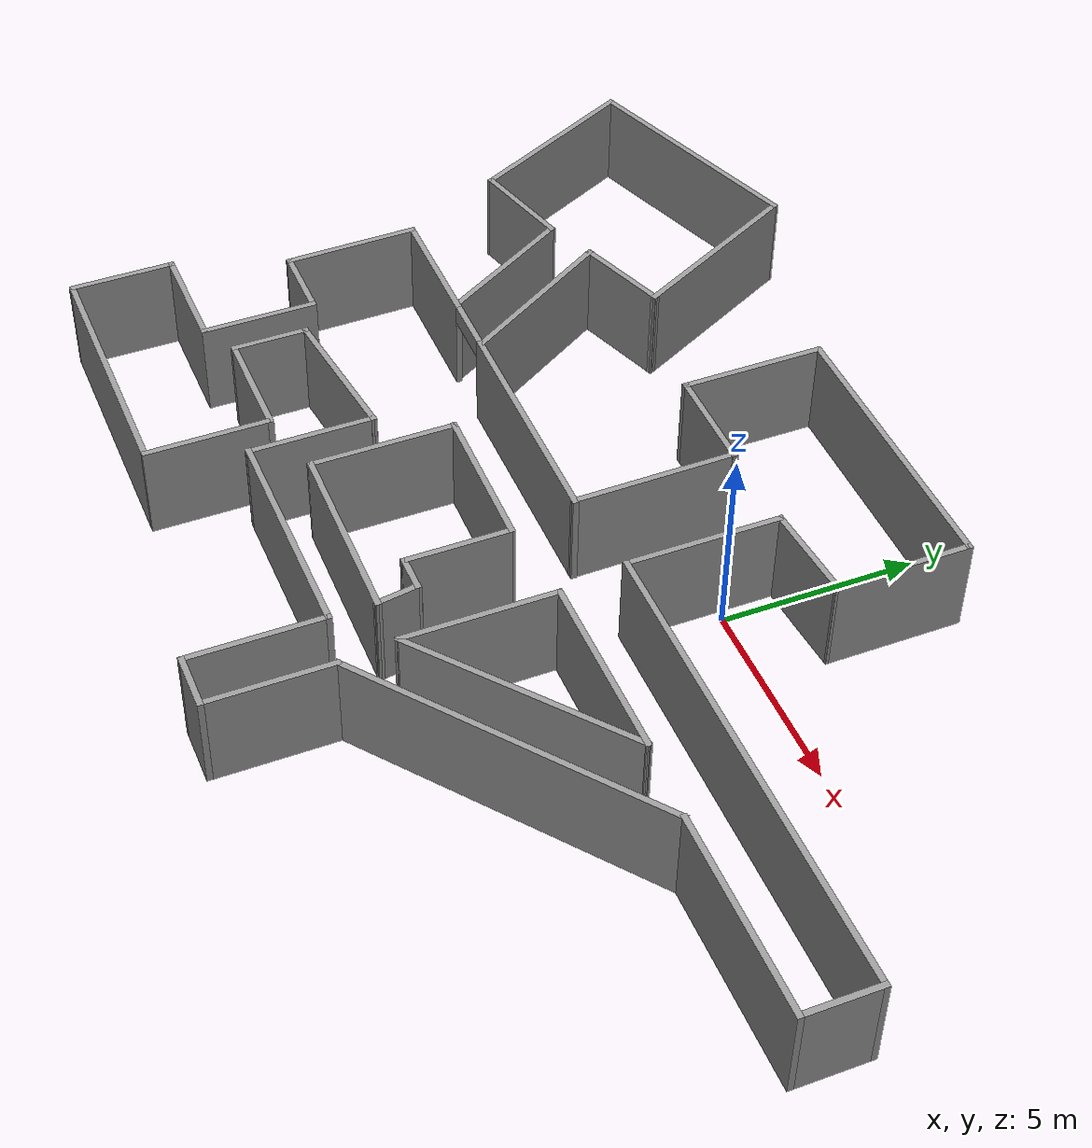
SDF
<?xml version='1.0'?>
<sdf version='1.7'>
  <model name='room2'>
    <pose>-2.56449 -2.91601 0 0 -0 0</pose>
    <link name='Wall_0'>
      <collision name='Wall_0_Collision'>
        <geometry>
          <box>
            <size>2.8007 0.15 2.5</size>
          </box>
        </geometry>
        <pose>0 0 1.25 0 -0 0</pose>
      </collision>
      <visual name='Wall_0_Visual'>
        <pose>0 0 1.25 0 -0 0</pose>
        <geometry>
          <box>
            <size>2.8007 0.15 2.5</size>
          </box>
        </geometry>
        <material>
          <script>
            <uri>file://media/materials/scripts/gazebo.material</uri>
            <name>Gazebo/Grey</name>
          </script>
          <ambient>1 1 1 1</ambient>
        </material>
        <meta>
          <layer>0</layer>
        </meta>
      </visual>
      <pose>-1.42016 4.33601 0 0 -0 3.14159</pose>
    </link>
    <link name='Wall_1'>
      <collision name='Wall_1_Collision'>
        <geometry>
          <box>
            <size>3.75 0.15 2.5</size>
          </box>
        </geometry>
        <pose>0 0 1.25 0 -0 0</pose>
      </collision>
      <visual name='Wall_1_Visual'>
        <pose>0 0 1.25 0 -0 0</pose>
        <geometry>
          <box>
            <size>3.75 0.15 2.5</size>
          </box>
        </geometry>
        <material>
          <script>
            <uri>file://media/materials/scripts/gazebo.material</uri>
            <name>Gazebo/Grey</name>
          </script>
          <ambient>1 1 1 1</ambient>
        </material>
        <meta>
          <layer>0</layer>
        </meta>
      </visual>
      <pose>-2.74551 6.13601 0 0 -0 1.5708</pose>
    </link>
    <link name='Wall_10'>
      <collision name='Wall_10_Collision'>
        <geometry>
          <box>
            <size>3.25 0.15 2.5</size>
          </box>
        </geometry>
        <pose>0 0 1.25 0 -0 0</pose>
      </collision>
      <visual name='Wall_10_Visual'>
        <pose>0 0 1.25 0 -0 0</pose>
        <geometry>
          <box>
            <size>3.25 0.15 2.5</size>
          </box>
        </geometry>
        <material>
          <script>
            <uri>file://media/materials/scripts/gazebo.material</uri>
            <name>Gazebo/Grey</name>
          </script>
          <ambient>1 1 1 1</ambient>
        </material>
        <meta>
          <layer>0</layer>
        </meta>
      </visual>
      <pose>2.61795 -7.99942 0 0 -0 -1.5708</pose>
    </link>
    <link name='Wall_11'>
      <collision name='Wall_11_Collision'>
        <geometry>
          <box>
            <size>1.5 0.15 2.5</size>
          </box>
        </geometry>
        <pose>0 0 1.25 0 -0 0</pose>
      </collision>
      <visual name='Wall_11_Visual'>
        <pose>0 0 1.25 0 -0 0</pose>
        <geometry>
          <box>
            <size>1.5 0.15 2.5</size>
          </box>
        </geometry>
        <material>
          <script>
            <uri>file://media/materials/scripts/gazebo.material</uri>
            <name>Gazebo/Grey</name>
          </script>
          <ambient>1 1 1 1</ambient>
        </material>
        <meta>
          <layer>0</layer>
        </meta>
      </visual>
      <pose>1.94295 -9.54942 0 0 -0 3.14159</pose>
    </link>
    <link name='Wall_12'>
      <collision name='Wall_12_Collision'>
        <geometry>
          <box>
            <size>3.5 0.15 2.5</size>
          </box>
        </geometry>
        <pose>0 0 1.25 0 -0 0</pose>
      </collision>
      <visual name='Wall_12_Visual'>
        <pose>0 0 1.25 0 -0 0</pose>
        <geometry>
          <box>
            <size>3.5 0.15 2.5</size>
          </box>
        </geometry>
        <material>
          <script>
            <uri>file://media/materials/scripts/gazebo.material</uri>
            <name>Gazebo/Grey</name>
          </script>
          <ambient>1 1 1 1</ambient>
        </material>
        <meta>
          <layer>0</layer>
        </meta>
      </visual>
      <pose>1.26795 -7.87442 0 0 -0 1.5708</pose>
    </link>
    <link name='Wall_13'>
      <collision name='Wall_13_Collision'>
        <geometry>
          <box>
            <size>5.90115 0.15 2.5</size>
          </box>
        </geometry>
        <pose>0 0 1.25 0 -0 0</pose>
      </collision>
      <visual name='Wall_13_Visual'>
        <pose>0 0 1.25 0 -0 0</pose>
        <geometry>
          <box>
            <size>5.90115 0.15 2.5</size>
          </box>
        </geometry>
        <material>
          <script>
            <uri>file://media/materials/scripts/gazebo.material</uri>
            <name>Gazebo/Grey</name>
          </script>
          <ambient>1 1 1 1</ambient>
        </material>
        <meta>
          <layer>0</layer>
        </meta>
      </visual>
      <pose>-1.60762 -6.19942 0 0 -0 3.14159</pose>
    </link>
    <link name='Wall_14'>
      <collision name='Wall_14_Collision'>
        <geometry>
          <box>
            <size>3.25 0.15 2.5</size>
          </box>
        </geometry>
        <pose>0 0 1.25 0 -0 0</pose>
      </collision>
      <visual name='Wall_14_Visual'>
        <pose>0 0 1.25 0 -0 0</pose>
        <geometry>
          <box>
            <size>3.25 0.15 2.5</size>
          </box>
        </geometry>
        <material>
          <script>
            <uri>file://media/materials/scripts/gazebo.material</uri>
            <name>Gazebo/Grey</name>
          </script>
          <ambient>1 1 1 1</ambient>
        </material>
        <meta>
          <layer>0</layer>
        </meta>
      </visual>
      <pose>-4.46007 -4.64942 0 0 -0 1.5708</pose>
    </link>
    <link name='Wall_16'>
      <collision name='Wall_16_Collision'>
        <geometry>
          <box>
            <size>3.50127 0.15 2.5</size>
          </box>
        </geometry>
        <pose>0 0 1.25 0 -0 0</pose>
      </collision>
      <visual name='Wall_16_Visual'>
        <pose>0 0 1.25 0 -0 0</pose>
        <geometry>
          <box>
            <size>3.50127 0.15 2.5</size>
          </box>
        </geometry>
        <material>
          <script>
            <uri>file://media/materials/scripts/gazebo.material</uri>
            <name>Gazebo/Grey</name>
          </script>
          <ambient>1 1 1 1</ambient>
        </material>
        <meta>
          <layer>0</layer>
        </meta>
      </visual>
      <pose>-10.9194 -1.37769 0 0 -0 1.5846</pose>
    </link>
    <link name='Wall_17'>
      <pose>-5.4985 0.28622 0 0 -0 -0.006373</pose>
      <visual name='Wall_17_Visual_0'>
        <pose>-3.78907 0 1.25 0 -0 0</pose>
        <geometry>
          <box>
            <size>3.46012 0.15 2.5</size>
          </box>
        </geometry>
        <material>
          <script>
            <uri>file://media/materials/scripts/gazebo.material</uri>
            <name>Gazebo/Grey</name>
          </script>
          <ambient>1 1 1 1</ambient>
        </material>
        <meta>
          <layer>0</layer>
        </meta>
      </visual>
      <collision name='Wall_17_Collision_0'>
        <geometry>
          <box>
            <size>3.46012 0.15 2.5</size>
          </box>
        </geometry>
        <pose>-3.78907 0 1.25 0 -0 0</pose>
      </collision>
      <visual name='Wall_17_Visual_1'>
        <pose>2.43798 0 1.25 0 -0 0</pose>
        <geometry>
          <box>
            <size>6.16229 0.15 2.5</size>
          </box>
        </geometry>
        <material>
          <script>
            <uri>file://media/materials/scripts/gazebo.material</uri>
            <name>Gazebo/Grey</name>
          </script>
          <ambient>1 1 1 1</ambient>
        </material>
        <meta>
          <layer>0</layer>
        </meta>
      </visual>
      <collision name='Wall_17_Collision_1'>
        <geometry>
          <box>
            <size>6.16229 0.15 2.5</size>
          </box>
        </geometry>
        <pose>2.43798 0 1.25 0 -0 0</pose>
      </collision>
      <visual name='Wall_17_Visual_2'>
        <pose>-1.35109 0 2.25 0 -0 0</pose>
        <geometry>
          <box>
            <size>1.41585 0.15 0.5</size>
          </box>
        </geometry>
        <material>
          <script>
            <uri>file://media/materials/scripts/gazebo.material</uri>
            <name>Gazebo/Grey</name>
          </script>
          <ambient>1 1 1 1</ambient>
        </material>
        <meta>
          <layer>0</layer>
        </meta>
      </visual>
      <collision name='Wall_17_Collision_2'>
        <geometry>
          <box>
            <size>1.41585 0.15 0.5</size>
          </box>
        </geometry>
        <pose>-1.35109 0 2.25 0 -0 0</pose>
      </collision>
    </link>
    <link name='Wall_18'>
      <collision name='Wall_18_Collision'>
        <geometry>
          <box>
            <size>4.23469 0.15 2.5</size>
          </box>
        </geometry>
        <pose>0 0 1.25 0 -0 0</pose>
      </collision>
      <visual name='Wall_18_Visual'>
        <pose>0 0 1.25 0 -0 0</pose>
        <geometry>
          <box>
            <size>4.23469 0.15 2.5</size>
          </box>
        </geometry>
        <material>
          <script>
            <uri>file://media/materials/scripts/gazebo.material</uri>
            <name>Gazebo/Grey</name>
          </script>
          <ambient>1 1 1 1</ambient>
        </material>
        <meta>
          <layer>0</layer>
        </meta>
      </visual>
      <pose>-0.097777 2.29377 0 0 -0 1.58067</pose>
    </link>
    <link name='Wall_2'>
      <collision name='Wall_2_Collision'>
        <geometry>
          <box>
            <size>7.5 0.15 2.5</size>
          </box>
        </geometry>
        <pose>0 0 1.25 0 -0 0</pose>
      </collision>
      <visual name='Wall_2_Visual'>
        <pose>0 0 1.25 0 -0 0</pose>
        <geometry>
          <box>
            <size>7.5 0.15 2.5</size>
          </box>
        </geometry>
        <material>
          <script>
            <uri>file://media/materials/scripts/gazebo.material</uri>
            <name>Gazebo/Grey</name>
          </script>
          <ambient>1 1 1 1</ambient>
        </material>
        <meta>
          <layer>0</layer>
        </meta>
      </visual>
      <pose>0.929492 7.93601 0 0 -0 0</pose>
    </link>
    <link name='Wall_20'>
      <collision name='Wall_20_Collision'>
        <geometry>
          <box>
            <size>4.84259 0.15 2.5</size>
          </box>
        </geometry>
        <pose>0 0 1.25 0 -0 0</pose>
      </collision>
      <visual name='Wall_20_Visual'>
        <pose>0 0 1.25 0 -0 0</pose>
        <geometry>
          <box>
            <size>4.84259 0.15 2.5</size>
          </box>
        </geometry>
        <material>
          <script>
            <uri>file://media/materials/scripts/gazebo.material</uri>
            <name>Gazebo/Grey</name>
          </script>
          <ambient>1 1 1 1</ambient>
        </material>
        <meta>
          <layer>0</layer>
        </meta>
      </visual>
      <pose>4.82573 -1.19236 0 0 -0 0</pose>
    </link>
    <link name='Wall_23'>
      <collision name='Wall_23_Collision'>
        <geometry>
          <box>
            <size>6.18532 0.15 2.5</size>
          </box>
        </geometry>
        <pose>0 0 1.25 0 -0 0</pose>
      </collision>
      <visual name='Wall_23_Visual'>
        <pose>0 0 1.25 0 -0 0</pose>
        <geometry>
          <box>
            <size>6.18532 0.15 2.5</size>
          </box>
        </geometry>
        <material>
          <script>
            <uri>file://media/materials/scripts/gazebo.material</uri>
            <name>Gazebo/Grey</name>
          </script>
          <ambient>1 1 1 1</ambient>
        </material>
        <meta>
          <layer>0</layer>
        </meta>
      </visual>
      <pose>4.82573 -3.09003 0 0 -0 -2.46151</pose>
    </link>
    <link name='Wall_24'>
      <collision name='Wall_24_Collision'>
        <geometry>
          <box>
            <size>3.94534 0.15 2.5</size>
          </box>
        </geometry>
        <pose>0 0 1.25 0 -0 0</pose>
      </collision>
      <visual name='Wall_24_Visual'>
        <pose>0 0 1.25 0 -0 0</pose>
        <geometry>
          <box>
            <size>3.94534 0.15 2.5</size>
          </box>
        </geometry>
        <material>
          <script>
            <uri>file://media/materials/scripts/gazebo.material</uri>
            <name>Gazebo/Grey</name>
          </script>
          <ambient>1 1 1 1</ambient>
        </material>
        <meta>
          <layer>0</layer>
        </meta>
      </visual>
      <pose>2.46195 -3.09003 0 0 -0 1.5708</pose>
    </link>
    <link name='Wall_27'>
      <collision name='Wall_27_Collision'>
        <geometry>
          <box>
            <size>4.94791 0.15 2.5</size>
          </box>
        </geometry>
        <pose>0 0 1.25 0 -0 0</pose>
      </collision>
      <visual name='Wall_27_Visual'>
        <pose>0 0 1.25 0 -0 0</pose>
        <geometry>
          <box>
            <size>4.94791 0.15 2.5</size>
          </box>
        </geometry>
        <material>
          <script>
            <uri>file://media/materials/scripts/gazebo.material</uri>
            <name>Gazebo/Grey</name>
          </script>
          <ambient>1 1 1 1</ambient>
        </material>
        <meta>
          <layer>0</layer>
        </meta>
      </visual>
      <pose>-1.12608 -5.02296 0 0 -0 3.12713</pose>
    </link>
    <link name='Wall_28'>
      <collision name='Wall_28_Collision'>
        <geometry>
          <box>
            <size>3.75 0.15 2.5</size>
          </box>
        </geometry>
        <pose>0 0 1.25 0 -0 0</pose>
      </collision>
      <visual name='Wall_28_Visual'>
        <pose>0 0 1.25 0 -0 0</pose>
        <geometry>
          <box>
            <size>3.75 0.15 2.5</size>
          </box>
        </geometry>
        <material>
          <script>
            <uri>file://media/materials/scripts/gazebo.material</uri>
            <name>Gazebo/Grey</name>
          </script>
          <ambient>1 1 1 1</ambient>
        </material>
        <meta>
          <layer>0</layer>
        </meta>
      </visual>
      <pose>-3.50165 -3.18827 0 0 -0 1.5708</pose>
    </link>
    <link name='Wall_29'>
      <collision name='Wall_29_Collision'>
        <geometry>
          <box>
            <size>3.94804 0.15 2.5</size>
          </box>
        </geometry>
        <pose>0 0 1.25 0 -0 0</pose>
      </collision>
      <visual name='Wall_29_Visual'>
        <pose>0 0 1.25 0 -0 0</pose>
        <geometry>
          <box>
            <size>3.94804 0.15 2.5</size>
          </box>
        </geometry>
        <material>
          <script>
            <uri>file://media/materials/scripts/gazebo.material</uri>
            <name>Gazebo/Grey</name>
          </script>
          <ambient>1 1 1 1</ambient>
        </material>
        <meta>
          <layer>0</layer>
        </meta>
      </visual>
      <pose>-1.62608 -1.42296 0 0 -0 -0.018271</pose>
    </link>
    <link name='Wall_3'>
      <collision name='Wall_3_Collision'>
        <geometry>
          <box>
            <size>3.5 0.15 2.5</size>
          </box>
        </geometry>
        <pose>0 0 1.25 0 -0 0</pose>
      </collision>
      <visual name='Wall_3_Visual'>
        <pose>0 0 1.25 0 -0 0</pose>
        <geometry>
          <box>
            <size>3.5 0.15 2.5</size>
          </box>
        </geometry>
        <material>
          <script>
            <uri>file://media/materials/scripts/gazebo.material</uri>
            <name>Gazebo/Grey</name>
          </script>
          <ambient>1 1 1 1</ambient>
        </material>
        <meta>
          <layer>0</layer>
        </meta>
      </visual>
      <pose>4.60449 6.26101 0 0 -0 -1.5708</pose>
    </link>
    <link name='Wall_30'>
      <collision name='Wall_30_Collision'>
        <geometry>
          <box>
            <size>2.75 0.15 2.5</size>
          </box>
        </geometry>
        <pose>0 0 1.25 0 -0 0</pose>
      </collision>
      <visual name='Wall_30_Visual'>
        <pose>0 0 1.25 0 -0 0</pose>
        <geometry>
          <box>
            <size>2.75 0.15 2.5</size>
          </box>
        </geometry>
        <material>
          <script>
            <uri>file://media/materials/scripts/gazebo.material</uri>
            <name>Gazebo/Grey</name>
          </script>
          <ambient>1 1 1 1</ambient>
        </material>
        <meta>
          <layer>0</layer>
        </meta>
      </visual>
      <pose>0.272622 -2.75766 0 0 -0 -1.5708</pose>
    </link>
    <link name='Wall_31'>
      <collision name='Wall_31_Collision'>
        <geometry>
          <box>
            <size>1 0.15 2.5</size>
          </box>
        </geometry>
        <pose>0 0 1.25 0 -0 0</pose>
      </collision>
      <visual name='Wall_31_Visual'>
        <pose>0 0 1.25 0 -0 0</pose>
        <geometry>
          <box>
            <size>1 0.15 2.5</size>
          </box>
        </geometry>
        <material>
          <script>
            <uri>file://media/materials/scripts/gazebo.material</uri>
            <name>Gazebo/Grey</name>
          </script>
          <ambient>1 1 1 1</ambient>
        </material>
        <meta>
          <layer>0</layer>
        </meta>
      </visual>
      <pose>0.697622 -4.05766 0 0 -0 0</pose>
    </link>
    <link name='Wall_32'>
      <collision name='Wall_32_Collision'>
        <geometry>
          <box>
            <size>1.16119 0.15 2.5</size>
          </box>
        </geometry>
        <pose>0 0 1.25 0 -0 0</pose>
      </collision>
      <visual name='Wall_32_Visual'>
        <pose>0 0 1.25 0 -0 0</pose>
        <geometry>
          <box>
            <size>1.16119 0.15 2.5</size>
          </box>
        </geometry>
        <material>
          <script>
            <uri>file://media/materials/scripts/gazebo.material</uri>
            <name>Gazebo/Grey</name>
          </script>
          <ambient>1 1 1 1</ambient>
        </material>
        <meta>
          <layer>0</layer>
        </meta>
      </visual>
      <pose>1.19762 -4.55766 0 0 -0 -1.42191</pose>
    </link>
    <link name='Wall_34'>
      <collision name='Wall_34_Collision'>
        <geometry>
          <box>
            <size>4 0.15 2.5</size>
          </box>
        </geometry>
        <pose>0 0 1.25 0 -0 0</pose>
      </collision>
      <visual name='Wall_34_Visual'>
        <pose>0 0 1.25 0 -0 0</pose>
        <geometry>
          <box>
            <size>4 0.15 2.5</size>
          </box>
        </geometry>
        <material>
          <script>
            <uri>file://media/materials/scripts/gazebo.material</uri>
            <name>Gazebo/Grey</name>
          </script>
          <ambient>1 1 1 1</ambient>
        </material>
        <meta>
          <layer>0</layer>
        </meta>
      </visual>
      <pose>-8.67557 2.03104 0 0 -0 2.0944</pose>
    </link>
    <link name='Wall_35'>
      <collision name='Wall_35_Collision'>
        <geometry>
          <box>
            <size>2.75 0.15 2.5</size>
          </box>
        </geometry>
        <pose>0 0 1.25 0 -0 0</pose>
      </collision>
      <visual name='Wall_35_Visual'>
        <pose>0 0 1.25 0 -0 0</pose>
        <geometry>
          <box>
            <size>2.75 0.15 2.5</size>
          </box>
        </geometry>
        <material>
          <script>
            <uri>file://media/materials/scripts/gazebo.material</uri>
            <name>Gazebo/Grey</name>
          </script>
          <ambient>1 1 1 1</ambient>
        </material>
        <meta>
          <layer>0</layer>
        </meta>
      </visual>
      <pose>-10.8938 3.36167 0 0 -0 -2.87979</pose>
    </link>
    <link name='Wall_36'>
      <collision name='Wall_36_Collision'>
        <geometry>
          <box>
            <size>5.05465 0.15 2.5</size>
          </box>
        </geometry>
        <pose>0 0 1.25 0 -0 0</pose>
      </collision>
      <visual name='Wall_36_Visual'>
        <pose>0 0 1.25 0 -0 0</pose>
        <geometry>
          <box>
            <size>5.05465 0.15 2.5</size>
          </box>
        </geometry>
        <material>
          <script>
            <uri>file://media/materials/scripts/gazebo.material</uri>
            <name>Gazebo/Grey</name>
          </script>
          <ambient>1 1 1 1</ambient>
        </material>
        <meta>
          <layer>0</layer>
        </meta>
      </visual>
      <pose>-13.2158 5.23356 0 0 -0 2.02065</pose>
    </link>
    <link name='Wall_37'>
      <collision name='Wall_37_Collision'>
        <geometry>
          <box>
            <size>6.42671 0.15 2.5</size>
          </box>
        </geometry>
        <pose>0 0 1.25 0 -0 0</pose>
      </collision>
      <visual name='Wall_37_Visual'>
        <pose>0 0 1.25 0 -0 0</pose>
        <geometry>
          <box>
            <size>6.42671 0.15 2.5</size>
          </box>
        </geometry>
        <material>
          <script>
            <uri>file://media/materials/scripts/gazebo.material</uri>
            <name>Gazebo/Grey</name>
          </script>
          <ambient>1 1 1 1</ambient>
        </material>
        <meta>
          <layer>0</layer>
        </meta>
      </visual>
      <pose>-11.3214 8.48279 0 0 -0 0.338066</pose>
    </link>
    <link name='Wall_38'>
      <collision name='Wall_38_Collision'>
        <geometry>
          <box>
            <size>5.17738 0.15 2.5</size>
          </box>
        </geometry>
        <pose>0 0 1.25 0 -0 0</pose>
      </collision>
      <visual name='Wall_38_Visual'>
        <pose>0 0 1.25 0 -0 0</pose>
        <geometry>
          <box>
            <size>5.17738 0.15 2.5</size>
          </box>
        </geometry>
        <material>
          <script>
            <uri>file://media/materials/scripts/gazebo.material</uri>
            <name>Gazebo/Grey</name>
          </script>
          <ambient>1 1 1 1</ambient>
        </material>
        <meta>
          <layer>0</layer>
        </meta>
      </visual>
      <pose>-7.22733 7.27999 0 0 -0 -1.10303</pose>
    </link>
    <link name='Wall_39'>
      <collision name='Wall_39_Collision'>
        <geometry>
          <box>
            <size>2.55703 0.15 2.5</size>
          </box>
        </geometry>
        <pose>0 0 1.25 0 -0 0</pose>
      </collision>
      <visual name='Wall_39_Visual'>
        <pose>0 0 1.25 0 -0 0</pose>
        <geometry>
          <box>
            <size>2.55703 0.15 2.5</size>
          </box>
        </geometry>
        <material>
          <script>
            <uri>file://media/materials/scripts/gazebo.material</uri>
            <name>Gazebo/Grey</name>
          </script>
          <ambient>1 1 1 1</ambient>
        </material>
        <meta>
          <layer>0</layer>
        </meta>
      </visual>
      <pose>-7.22733 4.63154 0 0 -0 -2.79857</pose>
    </link>
    <link name='Wall_4'>
      <collision name='Wall_4_Collision'>
        <geometry>
          <box>
            <size>2.55482 0.15 2.5</size>
          </box>
        </geometry>
        <pose>0 0 1.25 0 -0 0</pose>
      </collision>
      <visual name='Wall_4_Visual'>
        <pose>0 0 1.25 0 -0 0</pose>
        <geometry>
          <box>
            <size>2.55482 0.15 2.5</size>
          </box>
        </geometry>
        <material>
          <script>
            <uri>file://media/materials/scripts/gazebo.material</uri>
            <name>Gazebo/Grey</name>
          </script>
          <ambient>1 1 1 1</ambient>
        </material>
        <meta>
          <layer>0</layer>
        </meta>
      </visual>
      <pose>3.4059 4.49021 0 0 -0 -3.06184</pose>
    </link>
    <link name='Wall_40'>
      <collision name='Wall_40_Collision'>
        <geometry>
          <box>
            <size>4.67226 0.15 2.5</size>
          </box>
        </geometry>
        <pose>0 0 1.25 0 -0 0</pose>
      </collision>
      <visual name='Wall_40_Visual'>
        <pose>0 0 1.25 0 -0 0</pose>
        <geometry>
          <box>
            <size>4.67226 0.15 2.5</size>
          </box>
        </geometry>
        <material>
          <script>
            <uri>file://media/materials/scripts/gazebo.material</uri>
            <name>Gazebo/Grey</name>
          </script>
          <ambient>1 1 1 1</ambient>
        </material>
        <meta>
          <layer>0</layer>
        </meta>
      </visual>
      <pose>-7.2042 2.28378 0 0 -0 -1.03389</pose>
    </link>
    <link name='Wall_44'>
      <collision name='Wall_44_Collision'>
        <geometry>
          <box>
            <size>2 0.15 2.5</size>
          </box>
        </geometry>
        <pose>0 0 1.25 0 -0 0</pose>
      </collision>
      <visual name='Wall_44_Visual'>
        <pose>0 0 1.25 0 -0 0</pose>
        <geometry>
          <box>
            <size>2 0.15 2.5</size>
          </box>
        </geometry>
        <material>
          <script>
            <uri>file://media/materials/scripts/gazebo.material</uri>
            <name>Gazebo/Grey</name>
          </script>
          <ambient>1 1 1 1</ambient>
        </material>
        <meta>
          <layer>0</layer>
        </meta>
      </visual>
      <pose>-9.97126 -3.05316 0 0 -0 0</pose>
    </link>
    <link name='Wall_45'>
      <collision name='Wall_45_Collision'>
        <geometry>
          <box>
            <size>3 0.15 2.5</size>
          </box>
        </geometry>
        <pose>0 0 1.25 0 -0 0</pose>
      </collision>
      <visual name='Wall_45_Visual'>
        <pose>0 0 1.25 0 -0 0</pose>
        <geometry>
          <box>
            <size>3 0.15 2.5</size>
          </box>
        </geometry>
        <material>
          <script>
            <uri>file://media/materials/scripts/gazebo.material</uri>
            <name>Gazebo/Grey</name>
          </script>
          <ambient>1 1 1 1</ambient>
        </material>
        <meta>
          <layer>0</layer>
        </meta>
      </visual>
      <pose>-9.04626 -4.47816 0 0 -0 -1.5708</pose>
    </link>
    <link name='Wall_46'>
      <collision name='Wall_46_Collision'>
        <geometry>
          <box>
            <size>3 0.15 2.5</size>
          </box>
        </geometry>
        <pose>0 0 1.25 0 -0 0</pose>
      </collision>
      <visual name='Wall_46_Visual'>
        <pose>0 0 1.25 0 -0 0</pose>
        <geometry>
          <box>
            <size>3 0.15 2.5</size>
          </box>
        </geometry>
        <material>
          <script>
            <uri>file://media/materials/scripts/gazebo.material</uri>
            <name>Gazebo/Grey</name>
          </script>
          <ambient>1 1 1 1</ambient>
        </material>
        <meta>
          <layer>0</layer>
        </meta>
      </visual>
      <pose>-10.4713 -5.90316 0 0 -0 3.14159</pose>
    </link>
    <link name='Wall_47'>
      <collision name='Wall_47_Collision'>
        <geometry>
          <box>
            <size>2.75 0.15 2.5</size>
          </box>
        </geometry>
        <pose>0 0 1.25 0 -0 0</pose>
      </collision>
      <visual name='Wall_47_Visual'>
        <pose>0 0 1.25 0 -0 0</pose>
        <geometry>
          <box>
            <size>2.75 0.15 2.5</size>
          </box>
        </geometry>
        <material>
          <script>
            <uri>file://media/materials/scripts/gazebo.material</uri>
            <name>Gazebo/Grey</name>
          </script>
          <ambient>1 1 1 1</ambient>
        </material>
        <meta>
          <layer>0</layer>
        </meta>
      </visual>
      <pose>-11.8963 -7.20316 0 0 -0 -1.5708</pose>
    </link>
    <link name='Wall_48'>
      <collision name='Wall_48_Collision'>
        <geometry>
          <box>
            <size>6.75 0.15 2.5</size>
          </box>
        </geometry>
        <pose>0 0 1.25 0 -0 0</pose>
      </collision>
      <visual name='Wall_48_Visual'>
        <pose>0 0 1.25 0 -0 0</pose>
        <geometry>
          <box>
            <size>6.75 0.15 2.5</size>
          </box>
        </geometry>
        <material>
          <script>
            <uri>file://media/materials/scripts/gazebo.material</uri>
            <name>Gazebo/Grey</name>
          </script>
          <ambient>1 1 1 1</ambient>
        </material>
        <meta>
          <layer>0</layer>
        </meta>
      </visual>
      <pose>-8.59626 -8.50316 0 0 -0 0</pose>
    </link>
    <link name='Wall_49'>
      <collision name='Wall_49_Collision'>
        <geometry>
          <box>
            <size>3.25 0.15 2.5</size>
          </box>
        </geometry>
        <pose>0 0 1.25 0 -0 0</pose>
      </collision>
      <visual name='Wall_49_Visual'>
        <pose>0 0 1.25 0 -0 0</pose>
        <geometry>
          <box>
            <size>3.25 0.15 2.5</size>
          </box>
        </geometry>
        <material>
          <script>
            <uri>file://media/materials/scripts/gazebo.material</uri>
            <name>Gazebo/Grey</name>
          </script>
          <ambient>1 1 1 1</ambient>
        </material>
        <meta>
          <layer>0</layer>
        </meta>
      </visual>
      <pose>-5.29626 -6.95316 0 0 -0 1.5708</pose>
    </link>
    <link name='Wall_5'>
      <collision name='Wall_5_Collision'>
        <geometry>
          <box>
            <size>4 0.15 2.5</size>
          </box>
        </geometry>
        <pose>0 0 1.25 0 -0 0</pose>
      </collision>
      <visual name='Wall_5_Visual'>
        <pose>0 0 1.25 0 -0 0</pose>
        <geometry>
          <box>
            <size>4 0.15 2.5</size>
          </box>
        </geometry>
        <material>
          <script>
            <uri>file://media/materials/scripts/gazebo.material</uri>
            <name>Gazebo/Grey</name>
          </script>
          <ambient>1 1 1 1</ambient>
        </material>
        <meta>
          <layer>0</layer>
        </meta>
      </visual>
      <pose>2.20731 2.46942 0 0 -0 -1.5708</pose>
    </link>
    <link name='Wall_50'>
      <collision name='Wall_50_Collision'>
        <geometry>
          <box>
            <size>3 0.15 2.5</size>
          </box>
        </geometry>
        <pose>0 0 1.25 0 -0 0</pose>
      </collision>
      <visual name='Wall_50_Visual'>
        <pose>0 0 1.25 0 -0 0</pose>
        <geometry>
          <box>
            <size>3 0.15 2.5</size>
          </box>
        </geometry>
        <material>
          <script>
            <uri>file://media/materials/scripts/gazebo.material</uri>
            <name>Gazebo/Grey</name>
          </script>
          <ambient>1 1 1 1</ambient>
        </material>
        <meta>
          <layer>0</layer>
        </meta>
      </visual>
      <pose>-6.72126 -5.40316 0 0 -0 3.14159</pose>
    </link>
    <link name='Wall_51'>
      <collision name='Wall_51_Collision'>
        <geometry>
          <box>
            <size>2 0.15 2.5</size>
          </box>
        </geometry>
        <pose>0 0 1.25 0 -0 0</pose>
      </collision>
      <visual name='Wall_51_Visual'>
        <pose>0 0 1.25 0 -0 0</pose>
        <geometry>
          <box>
            <size>2 0.15 2.5</size>
          </box>
        </geometry>
        <material>
          <script>
            <uri>file://media/materials/scripts/gazebo.material</uri>
            <name>Gazebo/Grey</name>
          </script>
          <ambient>1 1 1 1</ambient>
        </material>
        <meta>
          <layer>0</layer>
        </meta>
      </visual>
      <pose>-8.14626 -4.47816 0 0 -0 1.5708</pose>
    </link>
    <link name='Wall_52'>
      <collision name='Wall_52_Collision'>
        <geometry>
          <box>
            <size>3.86401 0.15 2.5</size>
          </box>
        </geometry>
        <pose>0 0 1.25 0 -0 0</pose>
      </collision>
      <visual name='Wall_52_Visual'>
        <pose>0 0 1.25 0 -0 0</pose>
        <geometry>
          <box>
            <size>3.86401 0.15 2.5</size>
          </box>
        </geometry>
        <material>
          <script>
            <uri>file://media/materials/scripts/gazebo.material</uri>
            <name>Gazebo/Grey</name>
          </script>
          <ambient>1 1 1 1</ambient>
        </material>
        <meta>
          <layer>0</layer>
        </meta>
      </visual>
      <pose>-6.30316 -3.32629 0 0 -0 0.122475</pose>
    </link>
    <link name='Wall_6'>
      <collision name='Wall_6_Collision'>
        <geometry>
          <box>
            <size>12.25 0.15 2.5</size>
          </box>
        </geometry>
        <pose>0 0 1.25 0 -0 0</pose>
      </collision>
      <visual name='Wall_6_Visual'>
        <pose>0 0 1.25 0 -0 0</pose>
        <geometry>
          <box>
            <size>12.25 0.15 2.5</size>
          </box>
        </geometry>
        <material>
          <script>
            <uri>file://media/materials/scripts/gazebo.material</uri>
            <name>Gazebo/Grey</name>
          </script>
          <ambient>1 1 1 1</ambient>
        </material>
        <meta>
          <layer>0</layer>
        </meta>
      </visual>
      <pose>8.25731 0.544415 0 0 -0 0</pose>
    </link>
    <link name='Wall_7'>
      <collision name='Wall_7_Collision'>
        <geometry>
          <box>
            <size>2 0.15 2.5</size>
          </box>
        </geometry>
        <pose>0 0 1.25 0 -0 0</pose>
      </collision>
      <visual name='Wall_7_Visual'>
        <pose>0 0 1.25 0 -0 0</pose>
        <geometry>
          <box>
            <size>2 0.15 2.5</size>
          </box>
        </geometry>
        <material>
          <script>
            <uri>file://media/materials/scripts/gazebo.material</uri>
            <name>Gazebo/Grey</name>
          </script>
          <ambient>1 1 1 1</ambient>
        </material>
        <meta>
          <layer>0</layer>
        </meta>
      </visual>
      <pose>14.3073 -0.380585 0 0 -0 -1.5708</pose>
    </link>
    <link name='Wall_8'>
      <collision name='Wall_8_Collision'>
        <geometry>
          <box>
            <size>5.25 0.15 2.5</size>
          </box>
        </geometry>
        <pose>0 0 1.25 0 -0 0</pose>
      </collision>
      <visual name='Wall_8_Visual'>
        <pose>0 0 1.25 0 -0 0</pose>
        <geometry>
          <box>
            <size>5.25 0.15 2.5</size>
          </box>
        </geometry>
        <material>
          <script>
            <uri>file://media/materials/scripts/gazebo.material</uri>
            <name>Gazebo/Grey</name>
          </script>
          <ambient>1 1 1 1</ambient>
        </material>
        <meta>
          <layer>0</layer>
        </meta>
      </visual>
      <pose>11.7573 -1.30558 0 0 -0 3.14159</pose>
    </link>
    <link name='Wall_9'>
      <collision name='Wall_9_Collision'>
        <geometry>
          <box>
            <size>8.50935 0.15 2.5</size>
          </box>
        </geometry>
        <pose>0 0 1.25 0 -0 0</pose>
      </collision>
      <visual name='Wall_9_Visual'>
        <pose>0 0 1.25 0 -0 0</pose>
        <geometry>
          <box>
            <size>8.50935 0.15 2.5</size>
          </box>
        </geometry>
        <material>
          <script>
            <uri>file://media/materials/scripts/gazebo.material</uri>
            <name>Gazebo/Grey</name>
          </script>
          <ambient>1 1 1 1</ambient>
        </material>
        <meta>
          <layer>0</layer>
        </meta>
      </visual>
      <pose>5.91263 -3.8775 0 0 -0 -2.47878</pose>
    </link>
    <static>1</static>
  </model>
</sdf>
